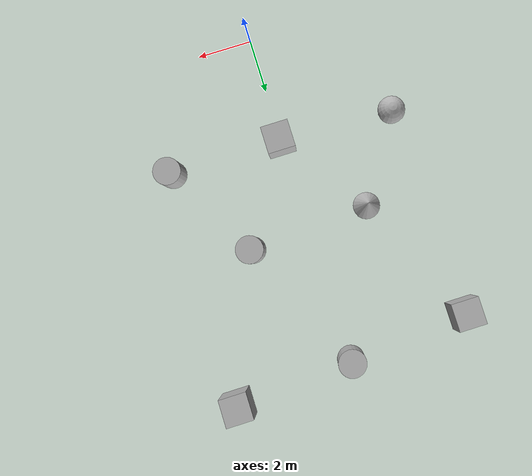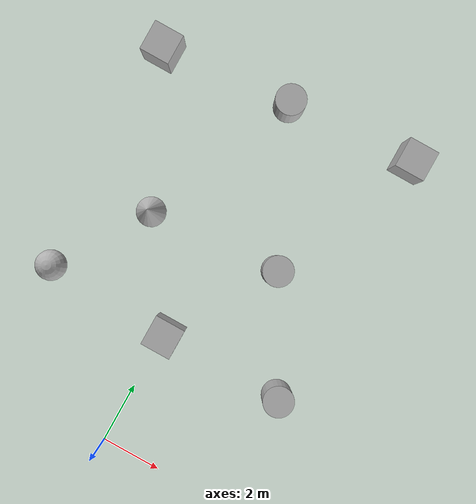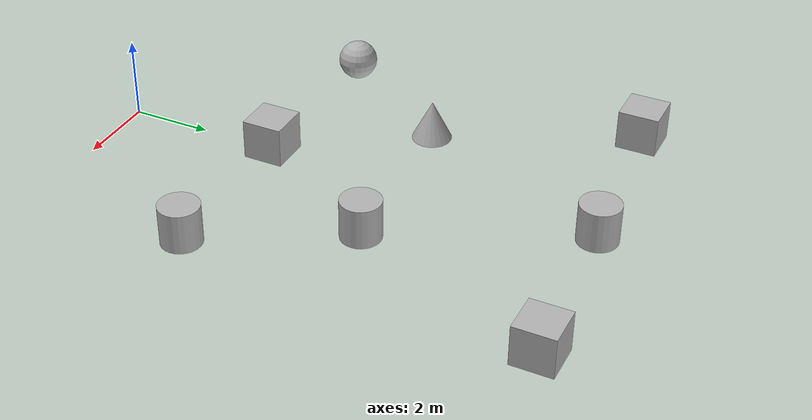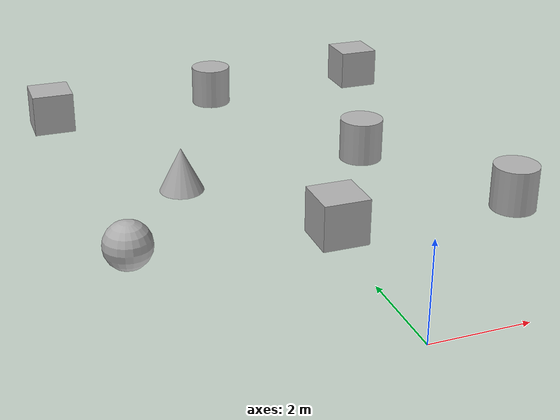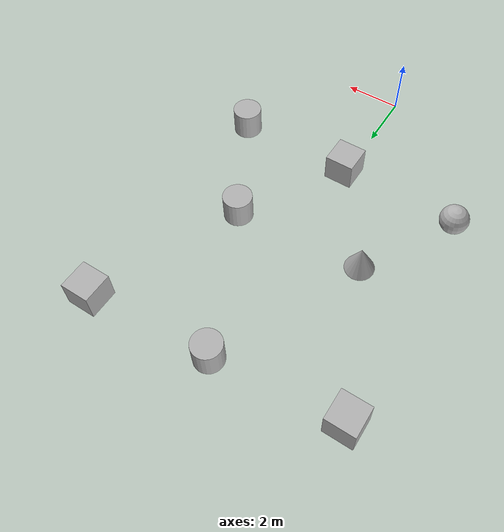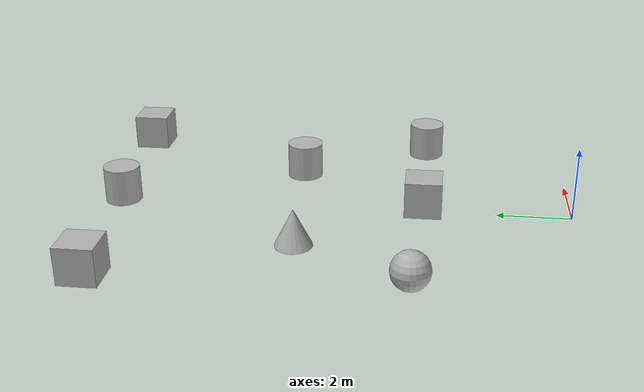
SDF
<sdf version="1.10">
 <world name="map">
  <model name="cylinder">
   <pose>2.2103512287139893 7.5216798782348633 0.49999900681186626 -9.380438796776889e-21 5.840954272710587e-19 -3.9988629385782753e-22</pose>
   <link name="cylinder_link">
    <inertial>
     <inertia>
      <ixx>0.14580000000000001</ixx>
      <ixy>0</ixy>
      <ixz>0</ixz>
      <iyy>0.14580000000000001</iyy>
      <iyz>0</iyz>
      <izz>0.125</izz>
     </inertia>
     <mass>1</mass>
    </inertial>
    <collision name="cylinder_collision">
     <geometry><cylinder><radius>0.5</radius><length>1</length></cylinder></geometry>
    </collision>
    <visual name="cylinder_visual">
     <geometry><cylinder><radius>0.5</radius><length>1</length></cylinder></geometry>
     <material>
      <ambient>0.300000012 0.300000012 0.300000012 1</ambient>
      <diffuse>0.699999988 0.699999988 0.699999988 1</diffuse>
      <specular>1 1 1 1</specular>
     </material>
    </visual>
   </link>
   <static>false</static>
  </model>
  <model name="cone">
   <pose>-2.2766587372073386 7.2114904457967635 0.49999999989482141 1.2283509474817856e-11 -9.8470640152443937e-10 8.0488830265741013e-17</pose>
   <link name="cone_link">
    <inertial>
     <inertia>
      <ixx>0.074999999999999997</ixx>
      <ixy>0</ixy>
      <ixz>0</ixz>
      <iyy>0.074999999999999997</iyy>
      <iyz>0</iyz>
      <izz>0.074999999999999997</izz>
     </inertia>
     <mass>1</mass>
    </inertial>
    <collision name="cone_collision">
     <geometry><cone><radius>0.5</radius><length>1</length></cone></geometry>
    </collision>
    <visual name="cone_visual">
     <geometry><cone><radius>0.5</radius><length>1</length></cone></geometry>
     <material>
      <ambient>0.300000012 0.300000012 0.300000012 1</ambient>
      <diffuse>0.699999988 0.699999988 0.699999988 1</diffuse>
      <specular>1 1 1 1</specular>
     </material>
    </visual>
   </link>
   <static>false</static>
  </model>
  <model name="box">
   <pose>0.078054927289485931 3.9950599670410156 0.49999900669006564 8.1650105912396326e-19 2.3474046418045679e-19 3.2729384830654395e-21</pose>
   <link name="box_link">
    <inertial>
     <inertia><ixx>0.16666</ixx><ixy>0</ixy><ixz>0</ixz><iyy>0.16666</iyy><iyz>0</iyz><izz>0.16666</izz></inertia>
     <mass>1</mass>
    </inertial>
    <collision name="box_collision"><geometry><box><size>1 1 1</size></box></geometry></collision>
    <visual name="box_visual">
     <geometry><box><size>1 1 1</size></box></geometry>
     <material>
      <ambient>0.300000012 0.300000012 0.300000012 1</ambient>
      <diffuse>0.699999988 0.699999988 0.699999988 1</diffuse>
      <specular>1 1 1 1</specular>
     </material>
    </visual>
   </link>
   <static>false</static>
  </model>
  <model name="sphere">
   <pose>-4.1518905203971732 4.1862525504543688 0.49999999020007913 6.0000049673720567e-06 2.746525045113366e-07 8.2235696031144399e-13</pose>
   <link name="sphere_link">
    <inertial>
     <inertia>
      <ixx>0.10000000000000001</ixx>
      <ixy>0</ixy>
      <ixz>0</ixz>
      <iyy>0.10000000000000001</iyy>
      <iyz>0</iyz>
      <izz>0.10000000000000001</izz>
     </inertia>
     <mass>1</mass>
    </inertial>
    <collision name="sphere_collision"><geometry><sphere><radius>0.5</radius></sphere></geometry></collision>
    <visual name="sphere_visual">
     <geometry><sphere><radius>0.5</radius></sphere></geometry>
     <material>
      <ambient>0.300000012 0.300000012 0.300000012 1</ambient>
      <diffuse>0.699999988 0.699999988 0.699999988 1</diffuse>
      <specular>1 1 1 1</specular>
     </material>
    </visual>
   </link>
   <static>false</static>
  </model>
  <model name="cylinder_0">
   <pose>4.1811103415217366 4.0004752687810736 0.49999944330790008 -2.9804068050434701e-19 1.9288630849547717e-19 2.5657332162035139e-21</pose>
   <link name="cylinder_link">
    <inertial>
     <inertia>
      <ixx>0.14580000000000001</ixx>
      <ixy>0</ixy>
      <ixz>0</ixz>
      <iyy>0.14580000000000001</iyy>
      <iyz>0</iyz>
      <izz>0.125</izz>
     </inertia>
     <mass>1</mass>
    </inertial>
    <collision name="cylinder_collision">
     <geometry><cylinder><radius>0.5</radius><length>1</length></cylinder></geometry>
    </collision>
    <visual name="cylinder_visual">
     <geometry><cylinder><radius>0.5</radius><length>1</length></cylinder></geometry>
     <material>
      <ambient>0.300000012 0.300000012 0.300000012 1</ambient>
      <diffuse>0.699999988 0.699999988 0.699999988 1</diffuse>
      <specular>1 1 1 1</specular>
     </material>
    </visual>
   </link>
   <static>false</static>
  </model>
  <model name="box_0">
   <pose>-4.3980187322214075 11.951514350130338 0.49999942061812713 6.8669531483192874e-19 5.6922481771497286e-19 2.0444303478734242e-21</pose>
   <link name="box_link">
    <inertial>
     <inertia><ixx>0.16666</ixx><ixy>0</ixy><ixz>0</ixz><iyy>0.16666</iyy><iyz>0</iyz><izz>0.16666</izz></inertia>
     <mass>1</mass>
    </inertial>
    <collision name="box_collision"><geometry><box><size>1 1 1</size></box></geometry></collision>
    <visual name="box_visual">
     <geometry><box><size>1 1 1</size></box></geometry>
     <material>
      <ambient>0.300000012 0.300000012 0.300000012 1</ambient>
      <diffuse>0.699999988 0.699999988 0.699999988 1</diffuse>
      <specular>1 1 1 1</specular>
     </material>
    </visual>
   </link>
   <static>false</static>
  </model>
  <model name="box_1">
   <pose>4.2607197642227028 12.643135191748637 0.49999942061812713 5.8904428753877045e-19 3.0539689403641572e-19 5.9630776850313596e-22</pose>
   <link name="box_link">
    <inertial>
     <inertia><ixx>0.16666</ixx><ixy>0</ixy><ixz>0</ixz><iyy>0.16666</iyy><iyz>0</iyz><izz>0.16666</izz></inertia>
     <mass>1</mass>
    </inertial>
    <collision name="box_collision"><geometry><box><size>1 1 1</size></box></geometry></collision>
    <visual name="box_visual">
     <geometry><box><size>1 1 1</size></box></geometry>
     <material>
      <ambient>0.300000012 0.300000012 0.300000012 1</ambient>
      <diffuse>0.699999988 0.699999988 0.699999988 1</diffuse>
      <specular>1 1 1 1</specular>
     </material>
    </visual>
   </link>
   <static>false</static>
  </model>
  <model name="cylinder_2">
   <pose>-0.034455338866608398 12.352816399467406 0.49999942638036005 4.2108048763714192e-21 3.5517911624457671e-19 1.1778536702934549e-20</pose>
   <link name="cylinder_link">
    <inertial>
     <inertia>
      <ixx>0.14580000000000001</ixx>
      <ixy>0</ixy>
      <ixz>0</ixz>
      <iyy>0.14580000000000001</iyy>
      <iyz>0</iyz>
      <izz>0.125</izz>
     </inertia>
     <mass>1</mass>
    </inertial>
    <collision name="cylinder_collision">
     <geometry><cylinder><radius>0.5</radius><length>1</length></cylinder></geometry>
    </collision>
    <visual name="cylinder_visual">
     <geometry><cylinder><radius>0.5</radius><length>1</length></cylinder></geometry>
     <material>
      <ambient>0.300000012 0.300000012 0.300000012 1</ambient>
      <diffuse>0.699999988 0.699999988 0.699999988 1</diffuse>
      <specular>1 1 1 1</specular>
     </material>
    </visual>
   </link>
   <static>false</static>
  </model>
 </world>
</sdf>
